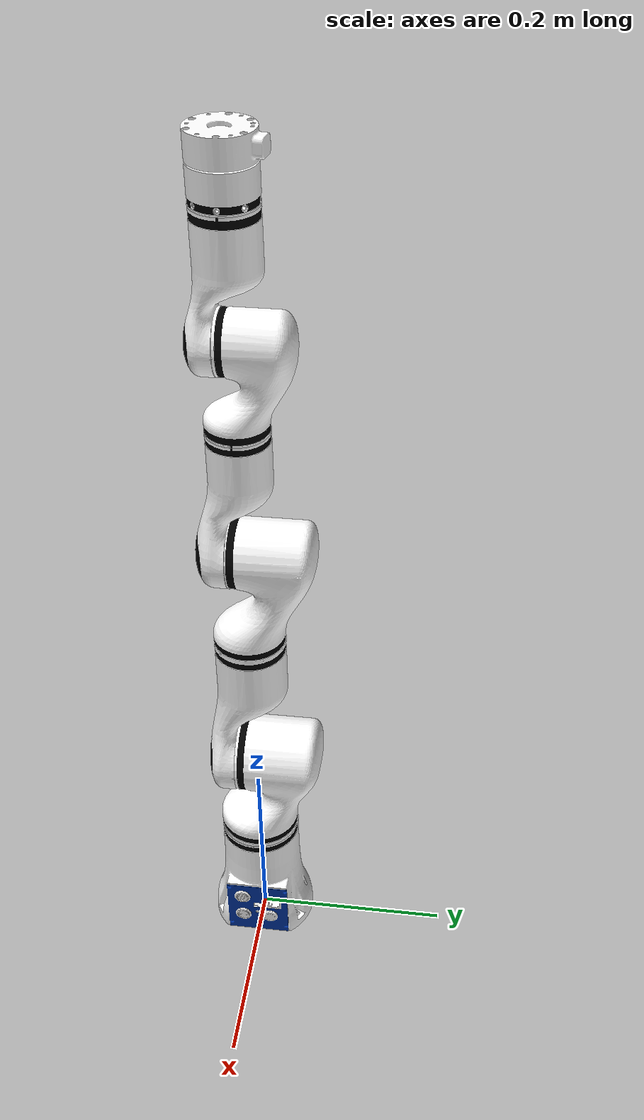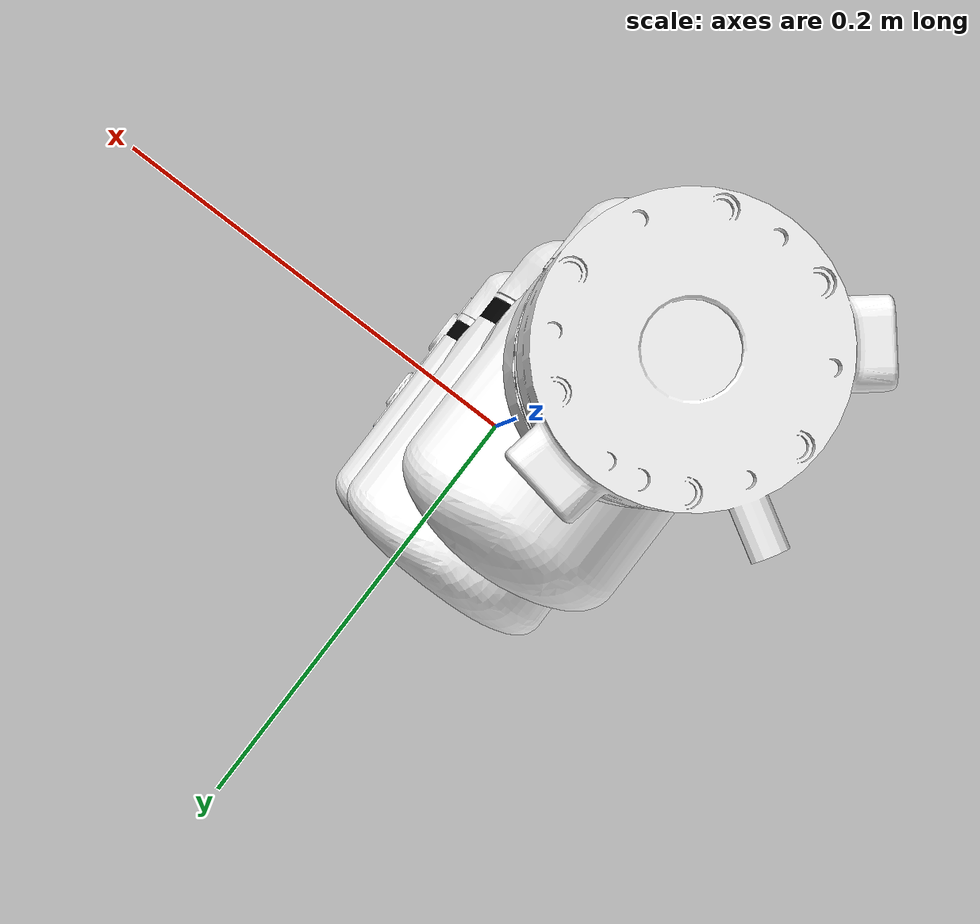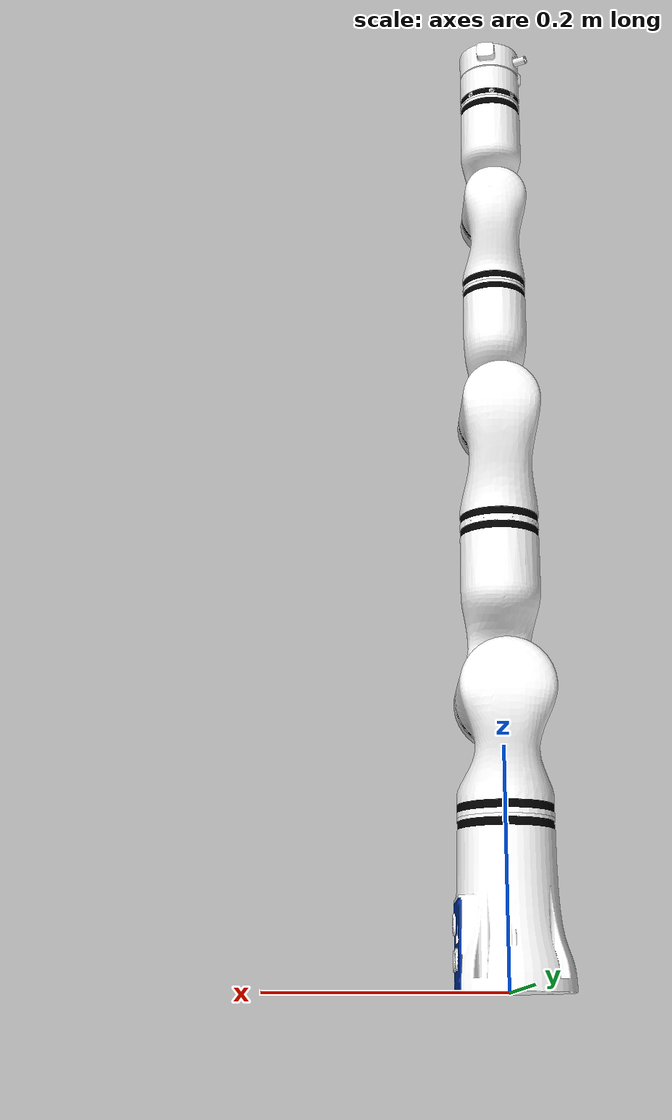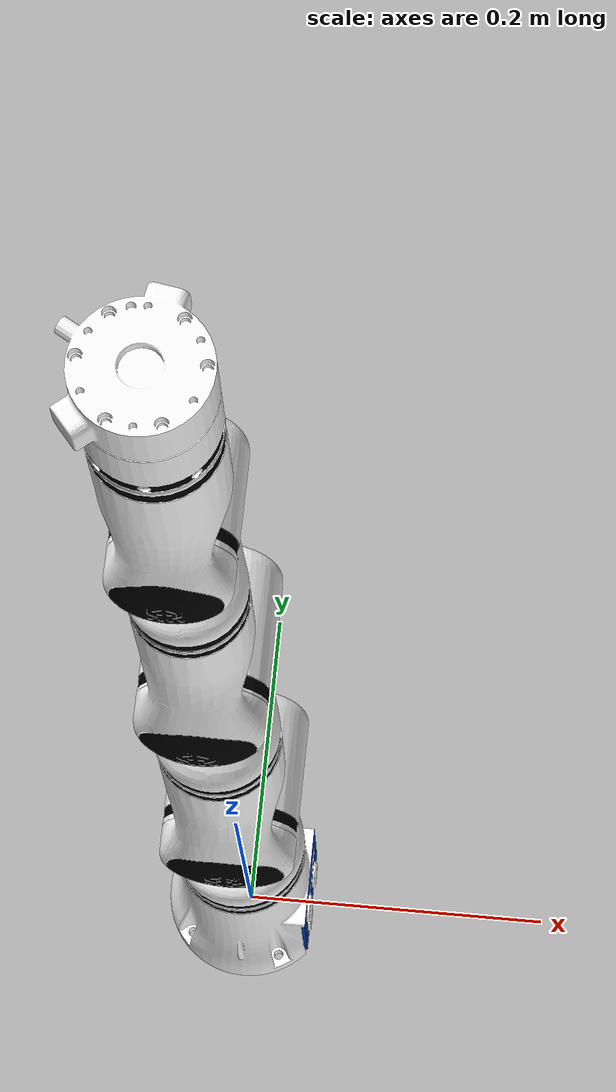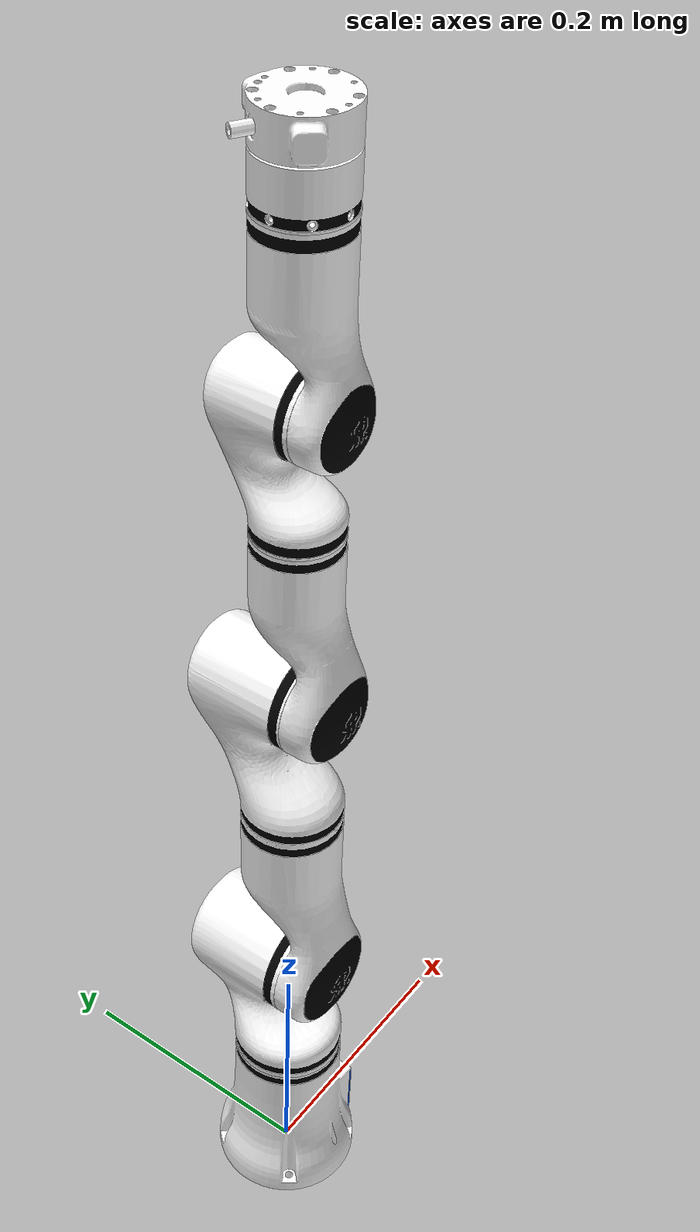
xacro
<?xml version='1.0' encoding='utf-8'?>
<robot name="rm_65_description">
  <link name="base_link">
    <inertial>
      <origin rpy="0 0 0" xyz="-0.000433277303987328 -3.54664423471128E-05 0.0599427668933796" />
      <mass value="0.841070778135659" />
      <inertia ixx="0.0017261110801622" ixy="2.52746264980217E-06" ixz="-3.67690303614961E-05" iyy="0.00170987405835604" iyz="1.67996364994424E-06" izz="0.000904023422915791" />
    </inertial>
    <collision>
      <origin rpy="0 0 0" xyz="0 0 0" />
      <geometry>
        <mesh filename="package://rm_description/meshes/rm_65_arm/base_link.STL" />
      </geometry>
    </collision>
    <visual>
      <origin xyz="0 0 0" rpy="0 0 0" />
      <geometry>
        <mesh filename="package://rm_description/meshes/dae/base/base_v1.0.dae" />
      </geometry>
    </visual>
  </link>
  <link name="Link1">
    <inertial>
      <origin rpy="0 0 0" xyz="1.2226305431569E-08 0.0211079974844683 -0.0251854220842269" />
      <mass value="0.593563443690403" />
      <inertia ixx="0.00126614120341847" ixy="-1.294980943835E-08" ixz="-9.80120923066996E-09" iyy="0.00118168178300364" iyz="-0.00021121727444415" izz="0.00056135241627747" />
    </inertial>
    <collision>
      <origin rpy="0 0 0" xyz="0 0 0" />
      <geometry>
        <mesh filename="package://rm_description/meshes/rm_65_arm/link1.STL" />
      </geometry>
    </collision>
    <visual>
      <origin xyz="0 0 0" rpy="0 0 0" />
      <geometry>
        <mesh filename="package://rm_description/meshes/dae/rm65/link_1.dae" />
      </geometry>
    </visual>
  </link>
  <joint name="joint1" type="revolute">
    <origin rpy="0 0 0" xyz="0 0 0.2405" />
    <parent link="base_link" />
    <child link="Link1" />
    <axis xyz="0 0 1" />
    <limit effort="60" lower="-3.1" upper="3.1" velocity="3.14" />
  </joint>
  <link name="Link2">
    <inertial>
      <origin rpy="0 0 0" xyz="0.152256463426163 4.75383656106654E-07 -0.00620260383607792" />
      <mass value="0.864175046869043" />
      <inertia ixx="0.00089150298478414" ixy="-2.23268489334765E-08" ixz="0.00156246461035015" iyy="0.00733754343083901" iyz="6.28110889329165E-09" izz="0.00697869103915473" />
    </inertial>
    <collision>
      <origin rpy="0 0 0" xyz="0 0 0" />
      <geometry>
        <mesh filename="package://rm_description/meshes/rm_65_arm/link2.STL" />
      </geometry>
    </collision>
    <visual>
      <origin xyz="0 0 0" rpy="0 0 0" />
      <geometry>
        <mesh filename="package://rm_description/meshes/dae/rm65/link_2.dae" />
      </geometry>
    </visual>
  </link>
  <joint name="joint2" type="revolute">
    <origin rpy="1.5708 -1.5708 0" xyz="0 0 0" />
    <parent link="Link1" />
    <child link="Link2" />
    <axis xyz="0 0 1" />
    <limit effort="60" lower="-2.268" upper="2.268" velocity="3.14" />
  </joint>
  <link name="Link3">
    <inertial>
      <origin rpy="0 0 0" xyz="5.05312670989961E-06 -0.0595925663694732 0.010569069212336" />
      <mass value="0.289633681624654" />
      <inertia ixx="0.00063737100450158" ixy="-7.05261293649751E-08" ixz="-3.86643272239426E-08" iyy="0.00015648388095025" iyz="-0.00014461035994916" izz="0.000614178164773085" />
    </inertial>
    <collision>
      <origin rpy="0 0 0" xyz="0 0 0" />
      <geometry>
        <mesh filename="package://rm_description/meshes/rm_65_arm/link3.STL" />
      </geometry>
    </collision>
    <visual>
      <origin xyz="0 0 0" rpy="0 0 0" />
      <geometry>
        <mesh filename="package://rm_description/meshes/dae/rm65/link_3.dae" />
      </geometry>
    </visual>
  </link>
  <joint name="joint3" type="revolute">
    <origin rpy="0 0 1.5708" xyz="0.256 0 0" />
    <parent link="Link2" />
    <child link="Link3" />
    <axis xyz="0 0 1" />
    <limit effort="30" lower="-2.355" upper="2.355" velocity="3.92" />
  </joint>
  <link name="Link4">
    <inertial>
      <origin rpy="0 0 0" xyz="1.15516617405898E-06 -0.0180424468598241 -0.0215394748352687" />
      <mass value="0.239419768320061" />
      <inertia ixx="0.000285938919722783" ixy="3.07101359163101E-09" ixz="-2.21994118981953E-09" iyy="0.000262727540304212" iyz="4.4236583260078E-05" izz="0.000119888082791859" />
    </inertial>
    <collision>
      <origin rpy="0 0 0" xyz="0 0 0" />
      <geometry>
        <mesh filename="package://rm_description/meshes/rm_65_arm/link4.STL" />
      </geometry>
    </collision>
    <visual>
      <origin xyz="0 0 0" rpy="0 0 0" />
      <geometry>
        <mesh filename="package://rm_description/meshes/dae/rm65/link_4.dae" />
      </geometry>
    </visual>
  </link>
  <joint name="joint4" type="revolute">
    <origin rpy="1.5708 0 0" xyz="0 -0.21 0" />
    <parent link="Link3" />
    <child link="Link4" />
    <axis xyz="0 0 1" />
    <limit effort="10" lower="-3.1" upper="3.1" velocity="3.92" />
  </joint>
  <link name="Link5">
    <inertial>
      <origin rpy="0 0 0" xyz="3.19794786262152E-06 -0.0593808368101458 0.00736804250989326" />
      <mass value="0.218799761431678" />
      <inertia ixx="0.000350540363914072" ixy="-3.41781619975602E-08" ixz="-1.77056457224373E-08" iyy="0.000104927867487581" iyz="-7.82431228461971E-05" izz="0.000334482418423629" />
    </inertial>
    <collision>
      <origin rpy="0 0 0" xyz="0 0 0" />
      <geometry>
        <mesh filename="package://rm_description/meshes/rm_65_arm/link5.STL" />
      </geometry>
    </collision>
    <visual>
      <origin xyz="0 0 0" rpy="0 0 0" />
      <geometry>
        <mesh filename="package://rm_description/meshes/dae/rm65/link_5.dae" />
      </geometry>
    </visual>
  </link>
  <joint name="joint5" type="revolute">
    <origin rpy="-1.5708 0 0" xyz="0 0 0" />
    <parent link="Link4" />
    <child link="Link5" />
    <axis xyz="0 0 1" />
    <limit effort="10" lower="-2.233" upper="2.233" velocity="3.92" />
  </joint>
  <link name="Link6">
    <inertial>
      <origin rpy="0 0 0" xyz="0.00032231 -0.00017819 -0.028676" />
      <mass value="0.14433" />
      <inertia ixx="3.6119E-05" ixy="-1.3242E-06" ixz="-3.2733E-08" iyy="3.4626E-05" iyz="7.6661E-09" izz="6.1463E-05" />
    </inertial>
    <collision>
      <origin rpy="0 0 0" xyz="0 0 0" />
      <geometry>
        <mesh filename="package://rm_description/meshes/rm_65_arm/link6_6f.STL" />
      </geometry>
    </collision>
    <visual>
      <origin xyz="0 0 0" rpy="0 0 0" />
      <geometry>
        <mesh filename="package://rm_description/meshes/dae/rm65/link_6_f.dae" />
      </geometry>
    </visual>
  </link>
  <joint name="joint6" type="revolute">
    <origin rpy="1.5708 0 0" xyz="0 -0.1725 0" />
    <parent link="Link5" />
    <child link="Link6" />
    <axis xyz="0 0 1" />
    <limit effort="100" lower="-6.283" upper="6.283" velocity="1" />
  </joint>
</robot>
